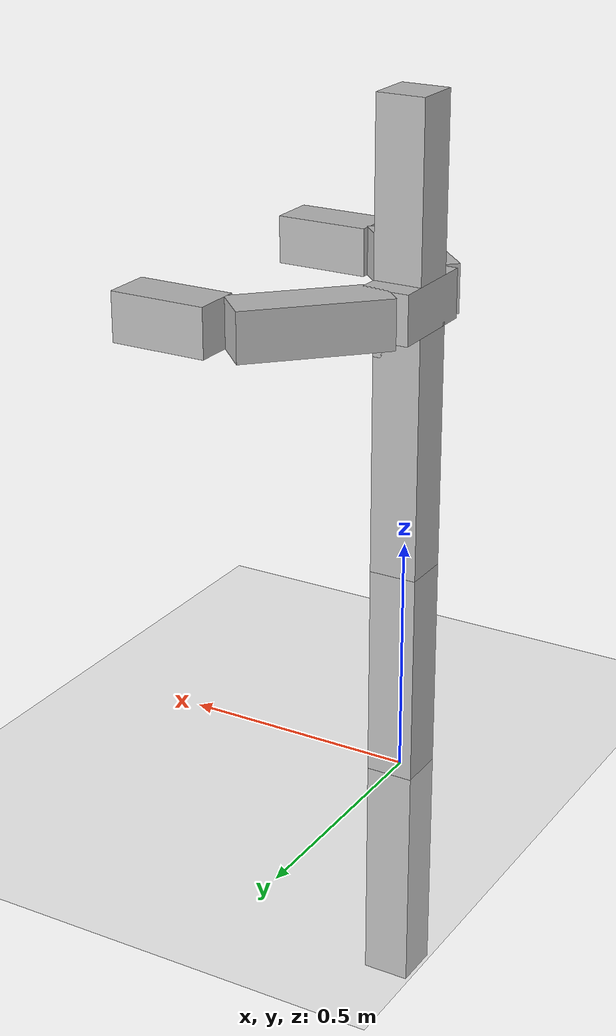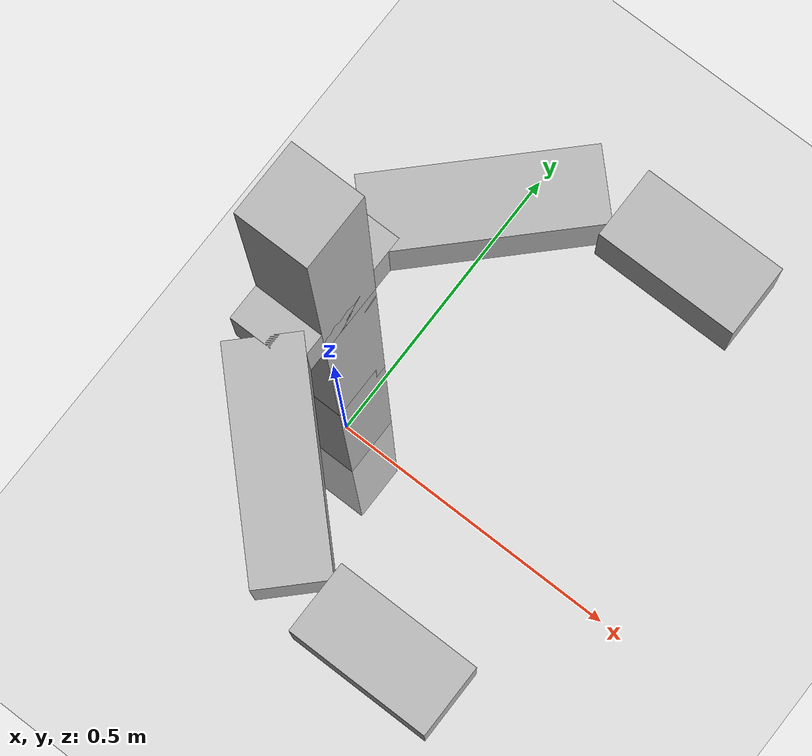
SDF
<?xml version="1.0"?>
<sdf version="1.4">
  <world name="default">
    <!-- Ground Plane -->
    <include>
      <uri>model://ground_plane</uri>
    </include>

    <include>
      <uri>model://sun</uri>
    </include>
	  <model name="manipulator">

        <static>false</static>

        <link name='lower'>
            <pose>0 0 0 0 0 0</pose>
            <inertial>
                <inertia>
                    <ixx>0.01</ixx>
                    <ixy>0</ixy>
                    <ixz>0</ixz>
                    <iyy>0.01</iyy>
                    <iyz>0</iyz>
                    <izz>0.01</izz>
                </inertia>
                <mass>50</mass>
            </inertial>

            <collision name='collision'>
              <geometry>
                <box>
                  <size>.1 .1 1</size>
                </box>
              </geometry>
            </collision>

            <visual name='visual'>
              <geometry>
                <box>
                  <size>.1 .1 1</size>
                </box>
              </geometry>
            </visual>

        </link>

        <link name='mid'>
            <pose>0 0 .70 0 0 0</pose>

            <collision name='collision'>
              <geometry>
                <box>
                  <size>.1 .1 .5</size>
                </box>
              </geometry>
            </collision>

            <visual name='visual'>
              <geometry>
                <box>
                  <size>.1 .1 .5</size>
                </box>
              </geometry>
            </visual>

        </link>

        <link name='top'>
            <pose>0 0 1.15 0 0 0</pose>

            <collision name='collision'>
              <geometry>
                <box>
                  <size>.1 .1 .5</size>
                </box>
              </geometry>
            </collision>

            <visual name='visual'>
              <geometry>
                <box>
                  <size>.1 .1 .5</size>
                </box>
              </geometry>
            </visual>

        </link>
      <joint name="fixed" type="fixed">
      <pose>0 0 0 0 0 0</pose>
        <child>low</child>
        <parent>world</parent>
      </joint>

      <joint type="revolute" name="low_mid">
        <pose>0 0 -0.225 0 0 0</pose>
        <child>mid</child>
        <parent>lower</parent>
        <axis>
          <xyz>0 0 1</xyz>
        </axis>
      </joint>
      <joint type="revolute" name="mid_top">
        <pose>0 0 -0.225 0 0 0</pose>
        <child>top</child>
        <parent>mid</parent>
        <axis>
          <xyz>0 0 1</xyz>
        </axis>
      </joint>

        <link name="palm">
            <pose>0.0 0.0 1 0 0 0</pose>
            <inertial>
                <inertia>
                    <ixx>0.01</ixx>
                    <ixy>0</ixy>
                    <ixz>0</ixz>
                    <iyy>0.01</iyy>
                    <iyz>0</iyz>
                    <izz>0.01</izz>
                </inertia>
                <mass>0.5</mass>
            </inertial>
            <collision name="collision">
                <geometry>
                    <box>
                        <size>0.1 0.2 0.1</size>
                    </box>
                </geometry>
            </collision>
            <visual name="visual">
                <geometry>
                    <box>
                        <size>0.1 0.2 0.1</size>
                    </box>
                </geometry>
                <material>
                    <script>Gazebo/Red</script>
                </material>
            </visual>
        </link>
        <link name="left_finger">
            <pose>0.1 0.2 1 0 0 -0.78539</pose>
            <inertial>
                <inertia>
                    <ixx>0.01</ixx>
                    <ixy>0</ixy>
                    <ixz>0</ixz>
                    <iyy>0.01</iyy>
                    <iyz>0</iyz>
                    <izz>0.01</izz>
                </inertia>
                <mass>0.1</mass>
            </inertial>
            <collision name="collision">
                <geometry>
                    <box>
                        <size>0.1 0.3 0.1</size>
                    </box>
                </geometry>
            </collision>
            <visual name="visual">
                <geometry>
                    <box>
                        <size>0.1 0.3 0.1</size>
                    </box>
                </geometry>
                <material>
                    <script>Gazebo/Blue</script>
                </material>
            </visual>
        </link>
        <link name="left_finger_tip">
            <pose>0.336 0.3 1 0 0 1.5707</pose>
            <inertial>
                <inertia>
                    <ixx>0.01</ixx>
                    <ixy>0</ixy>
                    <ixz>0</ixz>
                    <iyy>0.01</iyy>
                    <iyz>0</iyz>
                    <izz>0.01</izz>
                </inertia>
                <mass>0.1</mass>
            </inertial>
            <collision name="collision">
                <geometry>
                    <box>
                        <size>0.1 0.2 0.1</size>
                    </box>
                </geometry>
            </collision>
            <visual name="visual">
                <geometry>
                    <box>
                        <size>0.1 0.2 0.1</size>
                    </box>
                </geometry>
                <material>
                    <script>Gazebo/Blue</script>
                </material>
            </visual>
        </link>
        <link name="right_finger">
            <pose>0.1 -0.2 1 0 0 .78539</pose>
            <inertial>
                <inertia>
                    <ixx>0.01</ixx>
                    <ixy>0</ixy>
                    <ixz>0</ixz>
                    <iyy>0.01</iyy>
                    <iyz>0</iyz>
                    <izz>0.01</izz>
                </inertia>
                <mass>0.1</mass>
            </inertial>
            <collision name="collision">
                <geometry>
                    <box>
                        <size>0.1 0.3 0.1</size>
                    </box>
                </geometry>
            </collision>
            <visual name="visual">
                <geometry>
                    <box>
                        <size>0.1 0.3 0.1</size>
                    </box>
                </geometry>
                <material>
                    <script>Gazebo/Green</script>
                </material>
            </visual>
        </link>
        <link name="right_finger_tip">
            <pose>0.336 -0.3 1 0 0 1.5707</pose>
            <inertial>
                <inertia>
                    <ixx>0.01</ixx>
                    <ixy>0</ixy>
                    <ixz>0</ixz>
                    <iyy>0.01</iyy>
                    <iyz>0</iyz>
                    <izz>0.01</izz>
                </inertia>
                <mass>0.1</mass>
            </inertial>
            <collision name="collision">
                <geometry>
                    <box>
                        <size>0.1 0.2 0.1</size>
                    </box>
                </geometry>
            </collision>
            <visual name="visual">
                <geometry>
                    <box>
                        <size>0.1 0.2 0.1</size>
                    </box>
                </geometry>
                <material>
                    <script>Gazebo/Green</script>
                </material>
            </visual>
        </link>
                <joint name="palm_left_finger" type="revolute">
            <pose>0 -0.15 0 0 0 0</pose>
            <child>left_finger</child>
            <parent>palm</parent>
            <axis>
                <limit>
                    <lower>-0.4</lower>
                    <upper>0.4</upper>
                </limit>
                <xyz>0 0 1</xyz>
            </axis>
        </joint>
        <joint name="left_finger_tip" type="revolute">
            <pose>0 0.1 0 0 0 0</pose>
            <child>left_finger_tip</child>
            <parent>left_finger</parent>
            <axis>
                <limit>
                    <lower>-0.4</lower>
                    <upper>0.4</upper>
                </limit>
                <xyz>0 0 1</xyz>
            </axis>
        </joint>
        <joint name="palm_right_finger" type="revolute">
            <pose>0 0.15 0 0 0 0</pose>
            <child>right_finger</child>
            <parent>palm</parent>
            <axis>
                <limit>
                    <lower>-0.4</lower>
                    <upper>0.4</upper>
                </limit>
                <xyz>0 0 1</xyz>
            </axis>
        </joint>
        <joint name="right_finger_tip" type="revolute">
            <pose>0 0.1 0 0 0 0</pose>
            <child>right_finger_tip</child>
            <parent>right_finger</parent>
            <axis>
                <limit>
                    <lower>-0.4</lower>
                    <upper>0.4</upper>
                </limit>
                <xyz>0 0 1</xyz>
            </axis>
        </joint>

	    <joint name="arm_gripper_joint" type="fixed">
	      <parent>top</parent>
	      <child>palm</child>
	      <pose>0 0 2 0 0 0</pose>
	    </joint>
		<plugin name="three_link_package" filename="libthree_link_package.so"/>
	  </model>
  </world>
</sdf>
